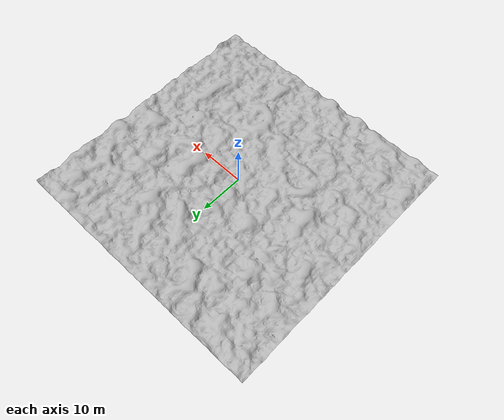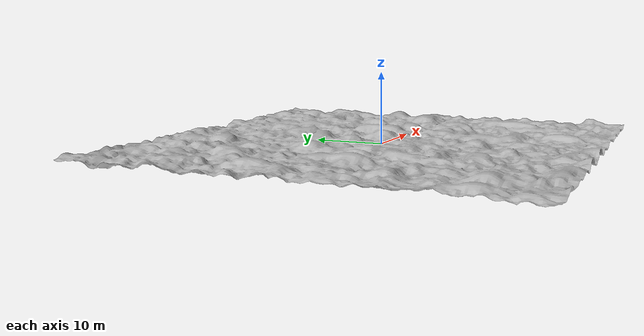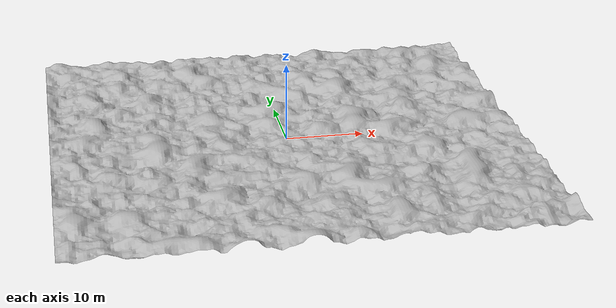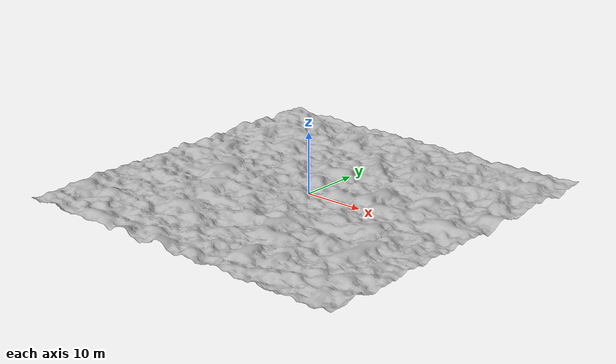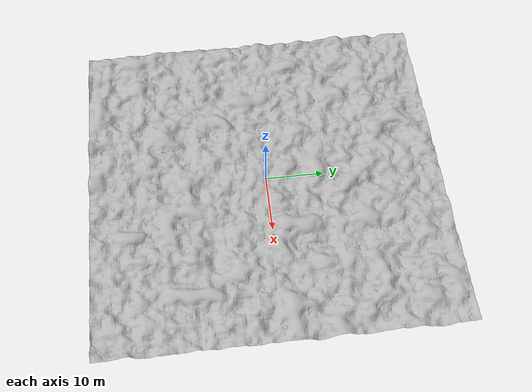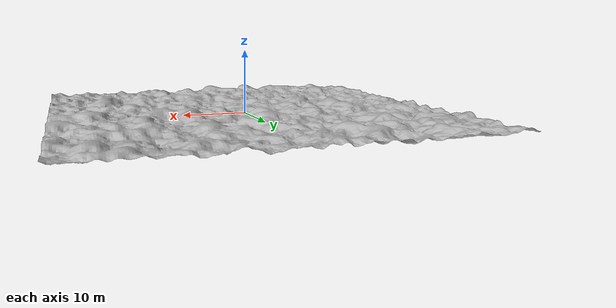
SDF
<?xml version="1.0" ?>
<sdf version="1.5">
  <model name="Landscape">
    <static>true</static>
    <link name="link">
      <collision name="collision">
        <geometry>
          <mesh>
            <uri>model://landscape/meshes/landscape.dae</uri>
            <scale>3 3 3</scale>
          </mesh>
        </geometry>
      </collision>
      <visual name="visual">
        <geometry>
          <mesh>
            <uri>model://landscape/meshes/landscape.dae</uri>
            <scale>3 3 3</scale>
          </mesh>
        </geometry>
      </visual>
    </link>
  </model>
</sdf>
